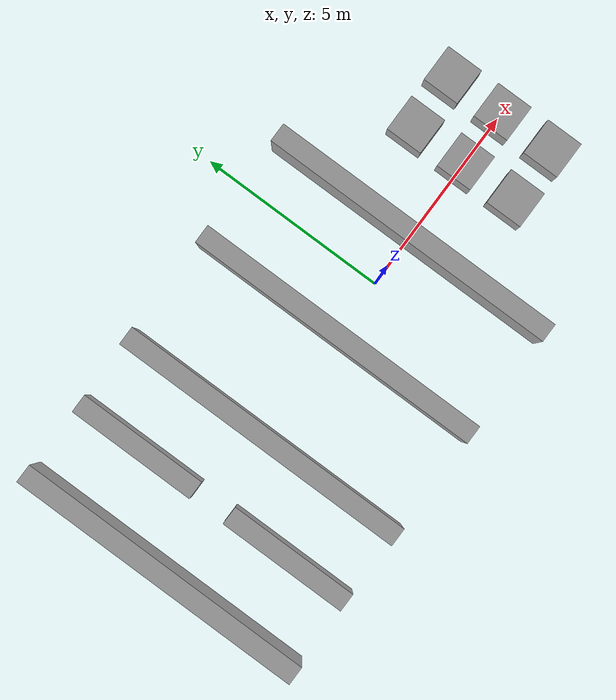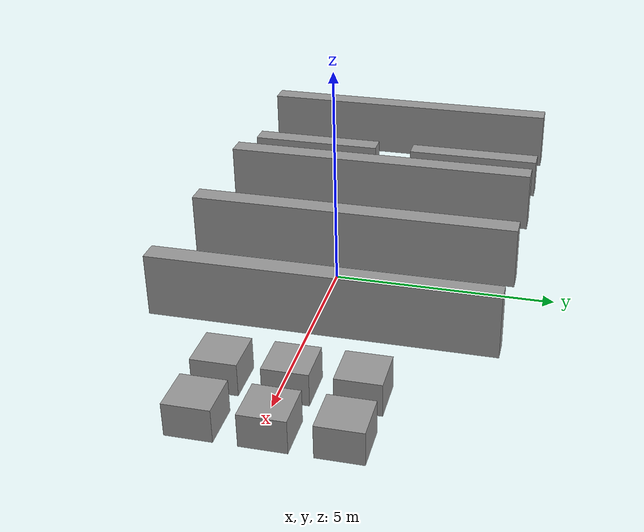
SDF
<?xml version='1.0'?>
<sdf version='1.7'>
  <model name='Untitled'>
    <link name='link_0'>
      <inertial>
        <mass>1</mass>
        <inertia>
          <ixx>0.166667</ixx>
          <ixy>0</ixy>
          <ixz>0</ixz>
          <iyy>0.166667</iyy>
          <iyz>0</iyz>
          <izz>0.166667</izz>
        </inertia>
        <pose>0 0 0 0 -0 0</pose>
      </inertial>
      <pose>-8.62917 0 0.229167 0 -0 0</pose>
      <gravity>1</gravity>
      <self_collide>0</self_collide>
      <kinematic>0</kinematic>
      <enable_wind>0</enable_wind>
      <visual name='visual'>
        <pose>0 0 0 0 -0 0</pose>
        <geometry>
          <box>
            <size>0.5 8 1.5</size>
          </box>
        </geometry>
        <material>
          <lighting>1</lighting>
          <script>
            <uri>file://media/materials/scripts/gazebo.material</uri>
            <name>Gazebo/Grey</name>
          </script>
          <shader type='pixel'>
            <normal_map>__default__</normal_map>
          </shader>
          <ambient>0.3 0.3 0.3 1</ambient>
          <diffuse>0.7 0.7 0.7 1</diffuse>
          <specular>0.01 0.01 0.01 1</specular>
          <emissive>0 0 0 1</emissive>
        </material>
        <transparency>0</transparency>
        <cast_shadows>1</cast_shadows>
      </visual>
      <collision name='collision'>
        <laser_retro>0</laser_retro>
        <max_contacts>10</max_contacts>
        <pose>0 0 0 0 -0 0</pose>
        <geometry>
          <box>
            <size>0.5 8 1.5</size>
          </box>
        </geometry>
        <surface>
          <friction>
            <ode>
              <mu>1</mu>
              <mu2>1</mu2>
              <fdir1>0 0 0</fdir1>
              <slip1>0</slip1>
              <slip2>0</slip2>
            </ode>
            <torsional>
              <coefficient>1</coefficient>
              <patch_radius>0</patch_radius>
              <surface_radius>0</surface_radius>
              <use_patch_radius>1</use_patch_radius>
              <ode>
                <slip>0</slip>
              </ode>
            </torsional>
          </friction>
          <bounce>
            <restitution_coefficient>0</restitution_coefficient>
            <threshold>1e+06</threshold>
          </bounce>
          <contact>
            <collide_without_contact>0</collide_without_contact>
            <collide_without_contact_bitmask>1</collide_without_contact_bitmask>
            <collide_bitmask>1</collide_bitmask>
            <ode>
              <soft_cfm>0</soft_cfm>
              <soft_erp>0.2</soft_erp>
              <kp>1e+13</kp>
              <kd>1</kd>
              <max_vel>0.01</max_vel>
              <min_depth>0</min_depth>
            </ode>
            <bullet>
              <split_impulse>1</split_impulse>
              <split_impulse_penetration_threshold>-0.01</split_impulse_penetration_threshold>
              <soft_cfm>0</soft_cfm>
              <soft_erp>0.2</soft_erp>
              <kp>1e+13</kp>
              <kd>1</kd>
            </bullet>
          </contact>
        </surface>
      </collision>
    </link>
    <link name='link_1'>
      <inertial>
        <mass>1</mass>
        <inertia>
          <ixx>0.166667</ixx>
          <ixy>0</ixy>
          <ixz>0</ixz>
          <iyy>0.166667</iyy>
          <iyz>0</iyz>
          <izz>0.166667</izz>
        </inertia>
        <pose>0 0 0 0 -0 0</pose>
      </inertial>
      <pose>-6.57917 2.25 -0.020833 0 -0 0</pose>
      <gravity>1</gravity>
      <self_collide>0</self_collide>
      <kinematic>0</kinematic>
      <enable_wind>0</enable_wind>
      <visual name='visual'>
        <pose>0 0 0 0 -0 0</pose>
        <geometry>
          <box>
            <size>0.5 3.5 1</size>
          </box>
        </geometry>
        <material>
          <lighting>1</lighting>
          <script>
            <uri>file://media/materials/scripts/gazebo.material</uri>
            <name>Gazebo/Grey</name>
          </script>
          <shader type='pixel'>
            <normal_map>__default__</normal_map>
          </shader>
          <ambient>0.3 0.3 0.3 1</ambient>
          <diffuse>0.7 0.7 0.7 1</diffuse>
          <specular>0.01 0.01 0.01 1</specular>
          <emissive>0 0 0 1</emissive>
        </material>
        <transparency>0</transparency>
        <cast_shadows>1</cast_shadows>
      </visual>
      <collision name='collision'>
        <laser_retro>0</laser_retro>
        <max_contacts>10</max_contacts>
        <pose>0 0 0 0 -0 0</pose>
        <geometry>
          <box>
            <size>0.5 3.5 1</size>
          </box>
        </geometry>
        <surface>
          <friction>
            <ode>
              <mu>1</mu>
              <mu2>1</mu2>
              <fdir1>0 0 0</fdir1>
              <slip1>0</slip1>
              <slip2>0</slip2>
            </ode>
            <torsional>
              <coefficient>1</coefficient>
              <patch_radius>0</patch_radius>
              <surface_radius>0</surface_radius>
              <use_patch_radius>1</use_patch_radius>
              <ode>
                <slip>0</slip>
              </ode>
            </torsional>
          </friction>
          <bounce>
            <restitution_coefficient>0</restitution_coefficient>
            <threshold>1e+06</threshold>
          </bounce>
          <contact>
            <collide_without_contact>0</collide_without_contact>
            <collide_without_contact_bitmask>1</collide_without_contact_bitmask>
            <collide_bitmask>1</collide_bitmask>
            <ode>
              <soft_cfm>0</soft_cfm>
              <soft_erp>0.2</soft_erp>
              <kp>1e+13</kp>
              <kd>1</kd>
              <max_vel>0.01</max_vel>
              <min_depth>0</min_depth>
            </ode>
            <bullet>
              <split_impulse>1</split_impulse>
              <split_impulse_penetration_threshold>-0.01</split_impulse_penetration_threshold>
              <soft_cfm>0</soft_cfm>
              <soft_erp>0.2</soft_erp>
              <kp>1e+13</kp>
              <kd>1</kd>
            </bullet>
          </contact>
        </surface>
      </collision>
    </link>
    <link name='link_10'>
      <inertial>
        <mass>1</mass>
        <inertia>
          <ixx>0.166667</ixx>
          <ixy>0</ixy>
          <ixz>0</ixz>
          <iyy>0.166667</iyy>
          <iyz>0</iyz>
          <izz>0.166667</izz>
        </inertia>
        <pose>0 0 0 0 -0 0</pose>
      </inertial>
      <pose>3.67083 -1.5 -0.145833 0 -0 0</pose>
      <gravity>1</gravity>
      <self_collide>0</self_collide>
      <kinematic>0</kinematic>
      <enable_wind>0</enable_wind>
      <visual name='visual'>
        <pose>0 0 0 0 -0 0</pose>
        <geometry>
          <box>
            <size>1 1 0.75</size>
          </box>
        </geometry>
        <material>
          <lighting>1</lighting>
          <script>
            <uri>file://media/materials/scripts/gazebo.material</uri>
            <name>Gazebo/Grey</name>
          </script>
          <shader type='pixel'>
            <normal_map>__default__</normal_map>
          </shader>
          <ambient>0.3 0.3 0.3 1</ambient>
          <diffuse>0.7 0.7 0.7 1</diffuse>
          <specular>0.01 0.01 0.01 1</specular>
          <emissive>0 0 0 1</emissive>
        </material>
        <transparency>0</transparency>
        <cast_shadows>1</cast_shadows>
      </visual>
      <collision name='collision'>
        <laser_retro>0</laser_retro>
        <max_contacts>10</max_contacts>
        <pose>0 0 0 0 -0 0</pose>
        <geometry>
          <box>
            <size>1 1 0.75</size>
          </box>
        </geometry>
        <surface>
          <friction>
            <ode>
              <mu>1</mu>
              <mu2>1</mu2>
              <fdir1>0 0 0</fdir1>
              <slip1>0</slip1>
              <slip2>0</slip2>
            </ode>
            <torsional>
              <coefficient>1</coefficient>
              <patch_radius>0</patch_radius>
              <surface_radius>0</surface_radius>
              <use_patch_radius>1</use_patch_radius>
              <ode>
                <slip>0</slip>
              </ode>
            </torsional>
          </friction>
          <bounce>
            <restitution_coefficient>0</restitution_coefficient>
            <threshold>1e+06</threshold>
          </bounce>
          <contact>
            <collide_without_contact>0</collide_without_contact>
            <collide_without_contact_bitmask>1</collide_without_contact_bitmask>
            <collide_bitmask>1</collide_bitmask>
            <ode>
              <soft_cfm>0</soft_cfm>
              <soft_erp>0.2</soft_erp>
              <kp>1e+13</kp>
              <kd>1</kd>
              <max_vel>0.01</max_vel>
              <min_depth>0</min_depth>
            </ode>
            <bullet>
              <split_impulse>1</split_impulse>
              <split_impulse_penetration_threshold>-0.01</split_impulse_penetration_threshold>
              <soft_cfm>0</soft_cfm>
              <soft_erp>0.2</soft_erp>
              <kp>1e+13</kp>
              <kd>1</kd>
            </bullet>
          </contact>
        </surface>
      </collision>
    </link>
    <link name='link_11'>
      <inertial>
        <mass>1</mass>
        <inertia>
          <ixx>0.166667</ixx>
          <ixy>0</ixy>
          <ixz>0</ixz>
          <iyy>0.166667</iyy>
          <iyz>0</iyz>
          <izz>0.166667</izz>
        </inertia>
        <pose>0 0 0 0 -0 0</pose>
      </inertial>
      <pose>5.17083 -1.5 -0.145833 0 -0 0</pose>
      <gravity>1</gravity>
      <self_collide>0</self_collide>
      <kinematic>0</kinematic>
      <enable_wind>0</enable_wind>
      <visual name='visual'>
        <pose>0 0 0 0 -0 0</pose>
        <geometry>
          <box>
            <size>1 1 0.75</size>
          </box>
        </geometry>
        <material>
          <lighting>1</lighting>
          <script>
            <uri>file://media/materials/scripts/gazebo.material</uri>
            <name>Gazebo/Grey</name>
          </script>
          <shader type='pixel'>
            <normal_map>__default__</normal_map>
          </shader>
          <ambient>0.3 0.3 0.3 1</ambient>
          <diffuse>0.7 0.7 0.7 1</diffuse>
          <specular>0.01 0.01 0.01 1</specular>
          <emissive>0 0 0 1</emissive>
        </material>
        <transparency>0</transparency>
        <cast_shadows>1</cast_shadows>
      </visual>
      <collision name='collision'>
        <laser_retro>0</laser_retro>
        <max_contacts>10</max_contacts>
        <pose>0 0 0 0 -0 0</pose>
        <geometry>
          <box>
            <size>1 1 0.75</size>
          </box>
        </geometry>
        <surface>
          <friction>
            <ode>
              <mu>1</mu>
              <mu2>1</mu2>
              <fdir1>0 0 0</fdir1>
              <slip1>0</slip1>
              <slip2>0</slip2>
            </ode>
            <torsional>
              <coefficient>1</coefficient>
              <patch_radius>0</patch_radius>
              <surface_radius>0</surface_radius>
              <use_patch_radius>1</use_patch_radius>
              <ode>
                <slip>0</slip>
              </ode>
            </torsional>
          </friction>
          <bounce>
            <restitution_coefficient>0</restitution_coefficient>
            <threshold>1e+06</threshold>
          </bounce>
          <contact>
            <collide_without_contact>0</collide_without_contact>
            <collide_without_contact_bitmask>1</collide_without_contact_bitmask>
            <collide_bitmask>1</collide_bitmask>
            <ode>
              <soft_cfm>0</soft_cfm>
              <soft_erp>0.2</soft_erp>
              <kp>1e+13</kp>
              <kd>1</kd>
              <max_vel>0.01</max_vel>
              <min_depth>0</min_depth>
            </ode>
            <bullet>
              <split_impulse>1</split_impulse>
              <split_impulse_penetration_threshold>-0.01</split_impulse_penetration_threshold>
              <soft_cfm>0</soft_cfm>
              <soft_erp>0.2</soft_erp>
              <kp>1e+13</kp>
              <kd>1</kd>
            </bullet>
          </contact>
        </surface>
      </collision>
    </link>
    <link name='link_2'>
      <inertial>
        <mass>1</mass>
        <inertia>
          <ixx>0.166667</ixx>
          <ixy>0</ixy>
          <ixz>0</ixz>
          <iyy>0.166667</iyy>
          <iyz>0</iyz>
          <izz>0.166667</izz>
        </inertia>
        <pose>0 0 0 0 -0 0</pose>
      </inertial>
      <pose>-6.57917 -2.25 -0.020833 0 -0 0</pose>
      <gravity>1</gravity>
      <self_collide>0</self_collide>
      <kinematic>0</kinematic>
      <enable_wind>0</enable_wind>
      <visual name='visual'>
        <pose>0 0 0 0 -0 0</pose>
        <geometry>
          <box>
            <size>0.5 3.5 1</size>
          </box>
        </geometry>
        <material>
          <lighting>1</lighting>
          <script>
            <uri>file://media/materials/scripts/gazebo.material</uri>
            <name>Gazebo/Grey</name>
          </script>
          <shader type='pixel'>
            <normal_map>__default__</normal_map>
          </shader>
          <ambient>0.3 0.3 0.3 1</ambient>
          <diffuse>0.7 0.7 0.7 1</diffuse>
          <specular>0.01 0.01 0.01 1</specular>
          <emissive>0 0 0 1</emissive>
        </material>
        <transparency>0</transparency>
        <cast_shadows>1</cast_shadows>
      </visual>
      <collision name='collision'>
        <laser_retro>0</laser_retro>
        <max_contacts>10</max_contacts>
        <pose>0 0 0 0 -0 0</pose>
        <geometry>
          <box>
            <size>0.5 3.5 1</size>
          </box>
        </geometry>
        <surface>
          <friction>
            <ode>
              <mu>1</mu>
              <mu2>1</mu2>
              <fdir1>0 0 0</fdir1>
              <slip1>0</slip1>
              <slip2>0</slip2>
            </ode>
            <torsional>
              <coefficient>1</coefficient>
              <patch_radius>0</patch_radius>
              <surface_radius>0</surface_radius>
              <use_patch_radius>1</use_patch_radius>
              <ode>
                <slip>0</slip>
              </ode>
            </torsional>
          </friction>
          <bounce>
            <restitution_coefficient>0</restitution_coefficient>
            <threshold>1e+06</threshold>
          </bounce>
          <contact>
            <collide_without_contact>0</collide_without_contact>
            <collide_without_contact_bitmask>1</collide_without_contact_bitmask>
            <collide_bitmask>1</collide_bitmask>
            <ode>
              <soft_cfm>0</soft_cfm>
              <soft_erp>0.2</soft_erp>
              <kp>1e+13</kp>
              <kd>1</kd>
              <max_vel>0.01</max_vel>
              <min_depth>0</min_depth>
            </ode>
            <bullet>
              <split_impulse>1</split_impulse>
              <split_impulse_penetration_threshold>-0.01</split_impulse_penetration_threshold>
              <soft_cfm>0</soft_cfm>
              <soft_erp>0.2</soft_erp>
              <kp>1e+13</kp>
              <kd>1</kd>
            </bullet>
          </contact>
        </surface>
      </collision>
    </link>
    <link name='link_3'>
      <inertial>
        <mass>1</mass>
        <inertia>
          <ixx>0.166667</ixx>
          <ixy>0</ixy>
          <ixz>0</ixz>
          <iyy>0.166667</iyy>
          <iyz>0</iyz>
          <izz>0.166667</izz>
        </inertia>
        <pose>0 0 0 0 -0 0</pose>
      </inertial>
      <pose>-4.57917 0 0.229167 0 -0 0</pose>
      <gravity>1</gravity>
      <self_collide>0</self_collide>
      <kinematic>0</kinematic>
      <enable_wind>0</enable_wind>
      <visual name='visual'>
        <pose>0 0 0 0 -0 0</pose>
        <geometry>
          <box>
            <size>0.5 8 1.5</size>
          </box>
        </geometry>
        <material>
          <lighting>1</lighting>
          <script>
            <uri>file://media/materials/scripts/gazebo.material</uri>
            <name>Gazebo/Grey</name>
          </script>
          <shader type='pixel'>
            <normal_map>__default__</normal_map>
          </shader>
          <ambient>0.3 0.3 0.3 1</ambient>
          <diffuse>0.7 0.7 0.7 1</diffuse>
          <specular>0.01 0.01 0.01 1</specular>
          <emissive>0 0 0 1</emissive>
        </material>
        <transparency>0</transparency>
        <cast_shadows>1</cast_shadows>
      </visual>
      <collision name='collision'>
        <laser_retro>0</laser_retro>
        <max_contacts>10</max_contacts>
        <pose>0 0 0 0 -0 0</pose>
        <geometry>
          <box>
            <size>0.5 8 1.5</size>
          </box>
        </geometry>
        <surface>
          <friction>
            <ode>
              <mu>1</mu>
              <mu2>1</mu2>
              <fdir1>0 0 0</fdir1>
              <slip1>0</slip1>
              <slip2>0</slip2>
            </ode>
            <torsional>
              <coefficient>1</coefficient>
              <patch_radius>0</patch_radius>
              <surface_radius>0</surface_radius>
              <use_patch_radius>1</use_patch_radius>
              <ode>
                <slip>0</slip>
              </ode>
            </torsional>
          </friction>
          <bounce>
            <restitution_coefficient>0</restitution_coefficient>
            <threshold>1e+06</threshold>
          </bounce>
          <contact>
            <collide_without_contact>0</collide_without_contact>
            <collide_without_contact_bitmask>1</collide_without_contact_bitmask>
            <collide_bitmask>1</collide_bitmask>
            <ode>
              <soft_cfm>0</soft_cfm>
              <soft_erp>0.2</soft_erp>
              <kp>1e+13</kp>
              <kd>1</kd>
              <max_vel>0.01</max_vel>
              <min_depth>0</min_depth>
            </ode>
            <bullet>
              <split_impulse>1</split_impulse>
              <split_impulse_penetration_threshold>-0.01</split_impulse_penetration_threshold>
              <soft_cfm>0</soft_cfm>
              <soft_erp>0.2</soft_erp>
              <kp>1e+13</kp>
              <kd>1</kd>
            </bullet>
          </contact>
        </surface>
      </collision>
    </link>
    <link name='link_4'>
      <inertial>
        <mass>1</mass>
        <inertia>
          <ixx>0.166667</ixx>
          <ixy>0</ixy>
          <ixz>0</ixz>
          <iyy>0.166667</iyy>
          <iyz>0</iyz>
          <izz>0.166667</izz>
        </inertia>
        <pose>0 0 0 0 -0 0</pose>
      </inertial>
      <pose>-1.57917 0 0.229167 0 -0 0</pose>
      <gravity>1</gravity>
      <self_collide>0</self_collide>
      <kinematic>0</kinematic>
      <enable_wind>0</enable_wind>
      <visual name='visual'>
        <pose>0 0 0 0 -0 0</pose>
        <geometry>
          <box>
            <size>0.5 8 1.5</size>
          </box>
        </geometry>
        <material>
          <lighting>1</lighting>
          <script>
            <uri>file://media/materials/scripts/gazebo.material</uri>
            <name>Gazebo/Grey</name>
          </script>
          <shader type='pixel'>
            <normal_map>__default__</normal_map>
          </shader>
          <ambient>0.3 0.3 0.3 1</ambient>
          <diffuse>0.7 0.7 0.7 1</diffuse>
          <specular>0.01 0.01 0.01 1</specular>
          <emissive>0 0 0 1</emissive>
        </material>
        <transparency>0</transparency>
        <cast_shadows>1</cast_shadows>
      </visual>
      <collision name='collision'>
        <laser_retro>0</laser_retro>
        <max_contacts>10</max_contacts>
        <pose>0 0 0 0 -0 0</pose>
        <geometry>
          <box>
            <size>0.5 8 1.5</size>
          </box>
        </geometry>
        <surface>
          <friction>
            <ode>
              <mu>1</mu>
              <mu2>1</mu2>
              <fdir1>0 0 0</fdir1>
              <slip1>0</slip1>
              <slip2>0</slip2>
            </ode>
            <torsional>
              <coefficient>1</coefficient>
              <patch_radius>0</patch_radius>
              <surface_radius>0</surface_radius>
              <use_patch_radius>1</use_patch_radius>
              <ode>
                <slip>0</slip>
              </ode>
            </torsional>
          </friction>
          <bounce>
            <restitution_coefficient>0</restitution_coefficient>
            <threshold>1e+06</threshold>
          </bounce>
          <contact>
            <collide_without_contact>0</collide_without_contact>
            <collide_without_contact_bitmask>1</collide_without_contact_bitmask>
            <collide_bitmask>1</collide_bitmask>
            <ode>
              <soft_cfm>0</soft_cfm>
              <soft_erp>0.2</soft_erp>
              <kp>1e+13</kp>
              <kd>1</kd>
              <max_vel>0.01</max_vel>
              <min_depth>0</min_depth>
            </ode>
            <bullet>
              <split_impulse>1</split_impulse>
              <split_impulse_penetration_threshold>-0.01</split_impulse_penetration_threshold>
              <soft_cfm>0</soft_cfm>
              <soft_erp>0.2</soft_erp>
              <kp>1e+13</kp>
              <kd>1</kd>
            </bullet>
          </contact>
        </surface>
      </collision>
    </link>
    <link name='link_5'>
      <inertial>
        <mass>1</mass>
        <inertia>
          <ixx>0.166667</ixx>
          <ixy>0</ixy>
          <ixz>0</ixz>
          <iyy>0.166667</iyy>
          <iyz>0</iyz>
          <izz>0.166667</izz>
        </inertia>
        <pose>0 0 0 0 -0 0</pose>
      </inertial>
      <pose>1.42083 0 0.229167 0 -0 0</pose>
      <gravity>1</gravity>
      <self_collide>0</self_collide>
      <kinematic>0</kinematic>
      <enable_wind>0</enable_wind>
      <visual name='visual'>
        <pose>0 0 0 0 -0 0</pose>
        <geometry>
          <box>
            <size>0.5 8 1.5</size>
          </box>
        </geometry>
        <material>
          <lighting>1</lighting>
          <script>
            <uri>file://media/materials/scripts/gazebo.material</uri>
            <name>Gazebo/Grey</name>
          </script>
          <shader type='pixel'>
            <normal_map>__default__</normal_map>
          </shader>
          <ambient>0.3 0.3 0.3 1</ambient>
          <diffuse>0.7 0.7 0.7 1</diffuse>
          <specular>0.01 0.01 0.01 1</specular>
          <emissive>0 0 0 1</emissive>
        </material>
        <transparency>0</transparency>
        <cast_shadows>1</cast_shadows>
      </visual>
      <collision name='collision'>
        <laser_retro>0</laser_retro>
        <max_contacts>10</max_contacts>
        <pose>0 0 0 0 -0 0</pose>
        <geometry>
          <box>
            <size>0.5 8 1.5</size>
          </box>
        </geometry>
        <surface>
          <friction>
            <ode>
              <mu>1</mu>
              <mu2>1</mu2>
              <fdir1>0 0 0</fdir1>
              <slip1>0</slip1>
              <slip2>0</slip2>
            </ode>
            <torsional>
              <coefficient>1</coefficient>
              <patch_radius>0</patch_radius>
              <surface_radius>0</surface_radius>
              <use_patch_radius>1</use_patch_radius>
              <ode>
                <slip>0</slip>
              </ode>
            </torsional>
          </friction>
          <bounce>
            <restitution_coefficient>0</restitution_coefficient>
            <threshold>1e+06</threshold>
          </bounce>
          <contact>
            <collide_without_contact>0</collide_without_contact>
            <collide_without_contact_bitmask>1</collide_without_contact_bitmask>
            <collide_bitmask>1</collide_bitmask>
            <ode>
              <soft_cfm>0</soft_cfm>
              <soft_erp>0.2</soft_erp>
              <kp>1e+13</kp>
              <kd>1</kd>
              <max_vel>0.01</max_vel>
              <min_depth>0</min_depth>
            </ode>
            <bullet>
              <split_impulse>1</split_impulse>
              <split_impulse_penetration_threshold>-0.01</split_impulse_penetration_threshold>
              <soft_cfm>0</soft_cfm>
              <soft_erp>0.2</soft_erp>
              <kp>1e+13</kp>
              <kd>1</kd>
            </bullet>
          </contact>
        </surface>
      </collision>
    </link>
    <link name='link_6'>
      <inertial>
        <mass>1</mass>
        <inertia>
          <ixx>0.166667</ixx>
          <ixy>0</ixy>
          <ixz>0</ixz>
          <iyy>0.166667</iyy>
          <iyz>0</iyz>
          <izz>0.166667</izz>
        </inertia>
        <pose>0 0 0 0 -0 0</pose>
      </inertial>
      <pose>3.67083 0 -0.145833 0 -0 0</pose>
      <gravity>1</gravity>
      <self_collide>0</self_collide>
      <kinematic>0</kinematic>
      <enable_wind>0</enable_wind>
      <visual name='visual'>
        <pose>0 0 0 0 -0 0</pose>
        <geometry>
          <box>
            <size>1 1 0.75</size>
          </box>
        </geometry>
        <material>
          <lighting>1</lighting>
          <script>
            <uri>file://media/materials/scripts/gazebo.material</uri>
            <name>Gazebo/Grey</name>
          </script>
          <shader type='pixel'>
            <normal_map>__default__</normal_map>
          </shader>
          <ambient>0.3 0.3 0.3 1</ambient>
          <diffuse>0.7 0.7 0.7 1</diffuse>
          <specular>0.01 0.01 0.01 1</specular>
          <emissive>0 0 0 1</emissive>
        </material>
        <transparency>0</transparency>
        <cast_shadows>1</cast_shadows>
      </visual>
      <collision name='collision'>
        <laser_retro>0</laser_retro>
        <max_contacts>10</max_contacts>
        <pose>0 0 0 0 -0 0</pose>
        <geometry>
          <box>
            <size>1 1 0.75</size>
          </box>
        </geometry>
        <surface>
          <friction>
            <ode>
              <mu>1</mu>
              <mu2>1</mu2>
              <fdir1>0 0 0</fdir1>
              <slip1>0</slip1>
              <slip2>0</slip2>
            </ode>
            <torsional>
              <coefficient>1</coefficient>
              <patch_radius>0</patch_radius>
              <surface_radius>0</surface_radius>
              <use_patch_radius>1</use_patch_radius>
              <ode>
                <slip>0</slip>
              </ode>
            </torsional>
          </friction>
          <bounce>
            <restitution_coefficient>0</restitution_coefficient>
            <threshold>1e+06</threshold>
          </bounce>
          <contact>
            <collide_without_contact>0</collide_without_contact>
            <collide_without_contact_bitmask>1</collide_without_contact_bitmask>
            <collide_bitmask>1</collide_bitmask>
            <ode>
              <soft_cfm>0</soft_cfm>
              <soft_erp>0.2</soft_erp>
              <kp>1e+13</kp>
              <kd>1</kd>
              <max_vel>0.01</max_vel>
              <min_depth>0</min_depth>
            </ode>
            <bullet>
              <split_impulse>1</split_impulse>
              <split_impulse_penetration_threshold>-0.01</split_impulse_penetration_threshold>
              <soft_cfm>0</soft_cfm>
              <soft_erp>0.2</soft_erp>
              <kp>1e+13</kp>
              <kd>1</kd>
            </bullet>
          </contact>
        </surface>
      </collision>
    </link>
    <link name='link_7'>
      <inertial>
        <mass>1</mass>
        <inertia>
          <ixx>0.166667</ixx>
          <ixy>0</ixy>
          <ixz>0</ixz>
          <iyy>0.166667</iyy>
          <iyz>0</iyz>
          <izz>0.166667</izz>
        </inertia>
        <pose>0 0 0 0 -0 0</pose>
      </inertial>
      <pose>3.67083 1.5 -0.145833 0 -0 0</pose>
      <gravity>1</gravity>
      <self_collide>0</self_collide>
      <kinematic>0</kinematic>
      <enable_wind>0</enable_wind>
      <visual name='visual'>
        <pose>0 0 0 0 -0 0</pose>
        <geometry>
          <box>
            <size>1 1 0.75</size>
          </box>
        </geometry>
        <material>
          <lighting>1</lighting>
          <script>
            <uri>file://media/materials/scripts/gazebo.material</uri>
            <name>Gazebo/Grey</name>
          </script>
          <shader type='pixel'>
            <normal_map>__default__</normal_map>
          </shader>
          <ambient>0.3 0.3 0.3 1</ambient>
          <diffuse>0.7 0.7 0.7 1</diffuse>
          <specular>0.01 0.01 0.01 1</specular>
          <emissive>0 0 0 1</emissive>
        </material>
        <transparency>0</transparency>
        <cast_shadows>1</cast_shadows>
      </visual>
      <collision name='collision'>
        <laser_retro>0</laser_retro>
        <max_contacts>10</max_contacts>
        <pose>0 0 0 0 -0 0</pose>
        <geometry>
          <box>
            <size>1 1 0.75</size>
          </box>
        </geometry>
        <surface>
          <friction>
            <ode>
              <mu>1</mu>
              <mu2>1</mu2>
              <fdir1>0 0 0</fdir1>
              <slip1>0</slip1>
              <slip2>0</slip2>
            </ode>
            <torsional>
              <coefficient>1</coefficient>
              <patch_radius>0</patch_radius>
              <surface_radius>0</surface_radius>
              <use_patch_radius>1</use_patch_radius>
              <ode>
                <slip>0</slip>
              </ode>
            </torsional>
          </friction>
          <bounce>
            <restitution_coefficient>0</restitution_coefficient>
            <threshold>1e+06</threshold>
          </bounce>
          <contact>
            <collide_without_contact>0</collide_without_contact>
            <collide_without_contact_bitmask>1</collide_without_contact_bitmask>
            <collide_bitmask>1</collide_bitmask>
            <ode>
              <soft_cfm>0</soft_cfm>
              <soft_erp>0.2</soft_erp>
              <kp>1e+13</kp>
              <kd>1</kd>
              <max_vel>0.01</max_vel>
              <min_depth>0</min_depth>
            </ode>
            <bullet>
              <split_impulse>1</split_impulse>
              <split_impulse_penetration_threshold>-0.01</split_impulse_penetration_threshold>
              <soft_cfm>0</soft_cfm>
              <soft_erp>0.2</soft_erp>
              <kp>1e+13</kp>
              <kd>1</kd>
            </bullet>
          </contact>
        </surface>
      </collision>
    </link>
    <link name='link_8'>
      <inertial>
        <mass>1</mass>
        <inertia>
          <ixx>0.166667</ixx>
          <ixy>0</ixy>
          <ixz>0</ixz>
          <iyy>0.166667</iyy>
          <iyz>0</iyz>
          <izz>0.166667</izz>
        </inertia>
        <pose>0 0 0 0 -0 0</pose>
      </inertial>
      <pose>5.17083 1.5 -0.145833 0 -0 0</pose>
      <gravity>1</gravity>
      <self_collide>0</self_collide>
      <kinematic>0</kinematic>
      <enable_wind>0</enable_wind>
      <visual name='visual'>
        <pose>0 0 0 0 -0 0</pose>
        <geometry>
          <box>
            <size>1 1 0.75</size>
          </box>
        </geometry>
        <material>
          <lighting>1</lighting>
          <script>
            <uri>file://media/materials/scripts/gazebo.material</uri>
            <name>Gazebo/Grey</name>
          </script>
          <shader type='pixel'>
            <normal_map>__default__</normal_map>
          </shader>
          <ambient>0.3 0.3 0.3 1</ambient>
          <diffuse>0.7 0.7 0.7 1</diffuse>
          <specular>0.01 0.01 0.01 1</specular>
          <emissive>0 0 0 1</emissive>
        </material>
        <transparency>0</transparency>
        <cast_shadows>1</cast_shadows>
      </visual>
      <collision name='collision'>
        <laser_retro>0</laser_retro>
        <max_contacts>10</max_contacts>
        <pose>0 0 0 0 -0 0</pose>
        <geometry>
          <box>
            <size>1 1 0.75</size>
          </box>
        </geometry>
        <surface>
          <friction>
            <ode>
              <mu>1</mu>
              <mu2>1</mu2>
              <fdir1>0 0 0</fdir1>
              <slip1>0</slip1>
              <slip2>0</slip2>
            </ode>
            <torsional>
              <coefficient>1</coefficient>
              <patch_radius>0</patch_radius>
              <surface_radius>0</surface_radius>
              <use_patch_radius>1</use_patch_radius>
              <ode>
                <slip>0</slip>
              </ode>
            </torsional>
          </friction>
          <bounce>
            <restitution_coefficient>0</restitution_coefficient>
            <threshold>1e+06</threshold>
          </bounce>
          <contact>
            <collide_without_contact>0</collide_without_contact>
            <collide_without_contact_bitmask>1</collide_without_contact_bitmask>
            <collide_bitmask>1</collide_bitmask>
            <ode>
              <soft_cfm>0</soft_cfm>
              <soft_erp>0.2</soft_erp>
              <kp>1e+13</kp>
              <kd>1</kd>
              <max_vel>0.01</max_vel>
              <min_depth>0</min_depth>
            </ode>
            <bullet>
              <split_impulse>1</split_impulse>
              <split_impulse_penetration_threshold>-0.01</split_impulse_penetration_threshold>
              <soft_cfm>0</soft_cfm>
              <soft_erp>0.2</soft_erp>
              <kp>1e+13</kp>
              <kd>1</kd>
            </bullet>
          </contact>
        </surface>
      </collision>
    </link>
    <link name='link_9'>
      <inertial>
        <mass>1</mass>
        <inertia>
          <ixx>0.166667</ixx>
          <ixy>0</ixy>
          <ixz>0</ixz>
          <iyy>0.166667</iyy>
          <iyz>0</iyz>
          <izz>0.166667</izz>
        </inertia>
        <pose>0 0 0 0 -0 0</pose>
      </inertial>
      <pose>5.17083 0 -0.145833 0 -0 0</pose>
      <gravity>1</gravity>
      <self_collide>0</self_collide>
      <kinematic>0</kinematic>
      <enable_wind>0</enable_wind>
      <visual name='visual'>
        <pose>0 0 0 0 -0 0</pose>
        <geometry>
          <box>
            <size>1 1 0.75</size>
          </box>
        </geometry>
        <material>
          <lighting>1</lighting>
          <script>
            <uri>file://media/materials/scripts/gazebo.material</uri>
            <name>Gazebo/Grey</name>
          </script>
          <shader type='pixel'>
            <normal_map>__default__</normal_map>
          </shader>
          <ambient>0.3 0.3 0.3 1</ambient>
          <diffuse>0.7 0.7 0.7 1</diffuse>
          <specular>0.01 0.01 0.01 1</specular>
          <emissive>0 0 0 1</emissive>
        </material>
        <transparency>0</transparency>
        <cast_shadows>1</cast_shadows>
      </visual>
      <collision name='collision'>
        <laser_retro>0</laser_retro>
        <max_contacts>10</max_contacts>
        <pose>0 0 0 0 -0 0</pose>
        <geometry>
          <box>
            <size>1 1 0.75</size>
          </box>
        </geometry>
        <surface>
          <friction>
            <ode>
              <mu>1</mu>
              <mu2>1</mu2>
              <fdir1>0 0 0</fdir1>
              <slip1>0</slip1>
              <slip2>0</slip2>
            </ode>
            <torsional>
              <coefficient>1</coefficient>
              <patch_radius>0</patch_radius>
              <surface_radius>0</surface_radius>
              <use_patch_radius>1</use_patch_radius>
              <ode>
                <slip>0</slip>
              </ode>
            </torsional>
          </friction>
          <bounce>
            <restitution_coefficient>0</restitution_coefficient>
            <threshold>1e+06</threshold>
          </bounce>
          <contact>
            <collide_without_contact>0</collide_without_contact>
            <collide_without_contact_bitmask>1</collide_without_contact_bitmask>
            <collide_bitmask>1</collide_bitmask>
            <ode>
              <soft_cfm>0</soft_cfm>
              <soft_erp>0.2</soft_erp>
              <kp>1e+13</kp>
              <kd>1</kd>
              <max_vel>0.01</max_vel>
              <min_depth>0</min_depth>
            </ode>
            <bullet>
              <split_impulse>1</split_impulse>
              <split_impulse_penetration_threshold>-0.01</split_impulse_penetration_threshold>
              <soft_cfm>0</soft_cfm>
              <soft_erp>0.2</soft_erp>
              <kp>1e+13</kp>
              <kd>1</kd>
            </bullet>
          </contact>
        </surface>
      </collision>
    </link>
    <static>0</static>
    <allow_auto_disable>1</allow_auto_disable>
  </model>
</sdf>
